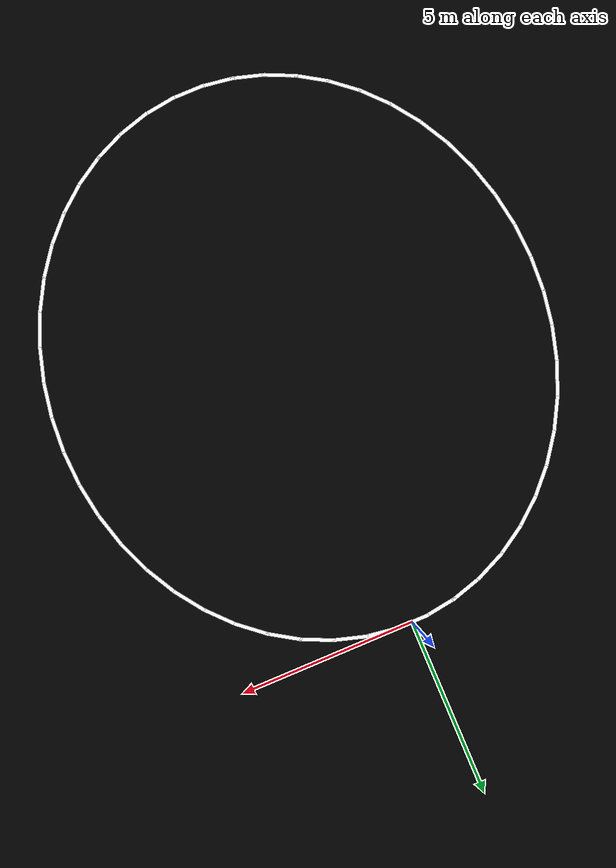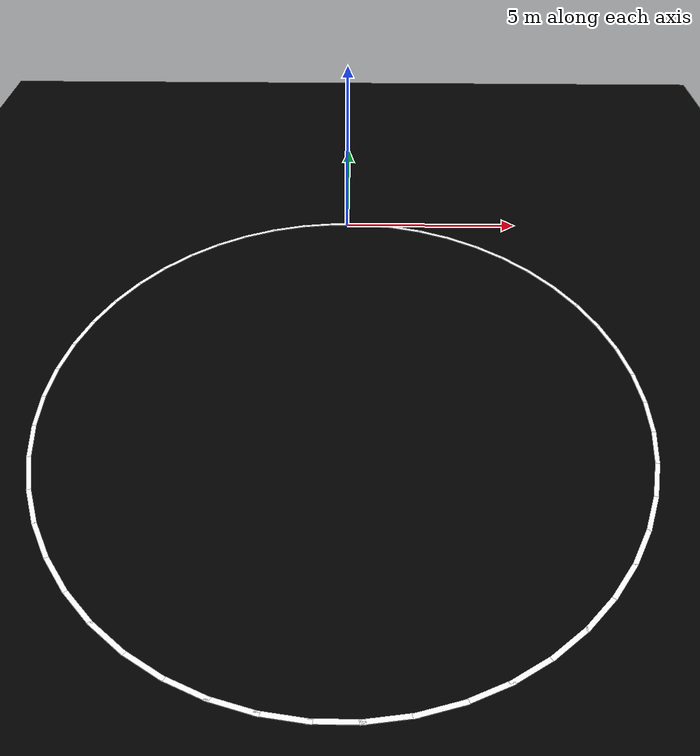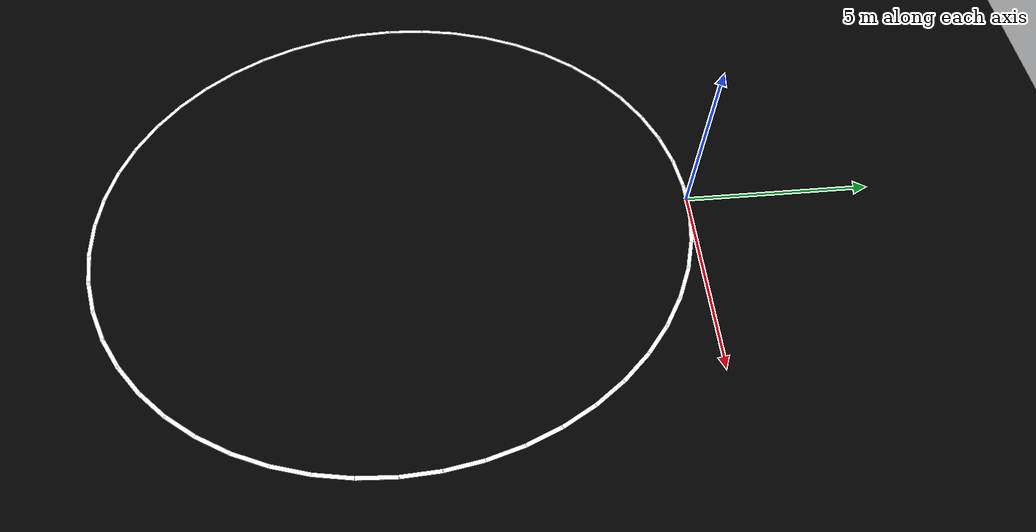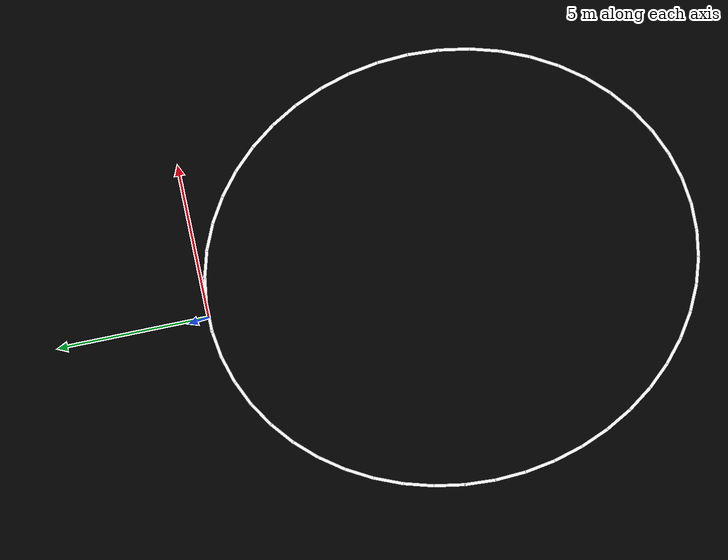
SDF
<?xml version="1.0" encoding="UTF-8"?>
<sdf version="1.9">
  <world name="line_following_track">
    <physics type="ode">
      <max_step_size>0.004</max_step_size>
      <real_time_factor>1.0</real_time_factor>
      <real_time_update_rate>250</real_time_update_rate>
    </physics>
    <gravity>0 0 -9.8</gravity>
    <magnetic_field>6e-06 2.3e-05 -4.2e-05</magnetic_field>
    <atmosphere type="adiabatic"/>
    <scene>
      <grid>false</grid>
      <ambient>0.4 0.4 0.4 1</ambient>
      <background>0.7 0.7 0.7 1</background>
      <shadows>true</shadows>
    </scene>

    <model name="ground_plane">
      <static>true</static>
      <link name="link">
        <collision name="collision">
          <geometry>
            <plane>
              <normal>0 0 1</normal>
              <size>1 1</size>
            </plane>
          </geometry>
          <surface>
            <friction>
              <ode/>
            </friction>
            <bounce/>
            <contact/>
          </surface>
        </collision>
        <visual name="visual">
          <geometry>
            <plane>
              <normal>0 0 1</normal>
              <size>500 500</size>
            </plane>
          </geometry>
          <material>
            <ambient>0 0 0 1</ambient>
            <diffuse>0 0 0 1</diffuse>
          </material>
        </visual>
        <pose>0 0 0 0 -0 0</pose>
        <inertial>
          <pose>0 0 0 0 -0 0</pose>
          <mass>1</mass>
          <inertia>
            <ixx>1</ixx>
            <ixy>0</ixy>
            <ixz>0</ixz>
            <iyy>1</iyy>
            <iyz>0</iyz>
            <izz>1</izz>
          </inertia>
        </inertial>
        <enable_wind>false</enable_wind>
      </link>
      <pose>0 0 0 0 -0 0</pose>
      <self_collide>false</self_collide>
    </model>

    <model name="track_seg_00"><static>true</static><link name="link"><visual name="visual"><geometry><box><size>1.000 0.1 0.01</size></box></geometry><material><ambient>1 1 1 1</ambient><diffuse>1 1 1 1</diffuse></material><pose>-0.000 0.000 0.005 0 0 -3.142</pose></visual></link></model>
    <model name="track_seg_01"><static>true</static><link name="link"><visual name="visual"><geometry><box><size>1.000 0.1 0.01</size></box></geometry><material><ambient>1 1 1 1</ambient><diffuse>1 1 1 1</diffuse></material><pose>-0.877 -0.063 0.005 0 0 -2.998</pose></visual></link></model>
    <model name="track_seg_02"><static>true</static><link name="link"><visual name="visual"><geometry><box><size>1.000 0.1 0.01</size></box></geometry><material><ambient>1 1 1 1</ambient><diffuse>1 1 1 1</diffuse></material><pose>-1.741 -0.251 0.005 0 0 -2.856</pose></visual></link></model>
    <model name="track_seg_03"><static>true</static><link name="link"><visual name="visual"><geometry><box><size>1.000 0.1 0.01</size></box></geometry><material><ambient>1 1 1 1</ambient><diffuse>1 1 1 1</diffuse></material><pose>-2.577 -0.562 0.005 0 0 -2.717</pose></visual></link></model>
    <model name="track_seg_04"><static>true</static><link name="link"><visual name="visual"><geometry><box><size>1.000 0.1 0.01</size></box></geometry><material><ambient>1 1 1 1</ambient><diffuse>1 1 1 1</diffuse></material><pose>-3.372 -0.990 0.005 0 0 -2.581</pose></visual></link></model>
    <model name="track_seg_05"><static>true</static><link name="link"><visual name="visual"><geometry><box><size>1.000 0.1 0.01</size></box></geometry><material><ambient>1 1 1 1</ambient><diffuse>1 1 1 1</diffuse></material><pose>-4.114 -1.528 0.005 0 0 -2.449</pose></visual></link></model>
    <model name="track_seg_06"><static>true</static><link name="link"><visual name="visual"><geometry><box><size>1.000 0.1 0.01</size></box></geometry><material><ambient>1 1 1 1</ambient><diffuse>1 1 1 1</diffuse></material><pose>-4.792 -2.168 0.005 0 0 -2.321</pose></visual></link></model>
    <model name="track_seg_07"><static>true</static><link name="link"><visual name="visual"><geometry><box><size>1.000 0.1 0.01</size></box></geometry><material><ambient>1 1 1 1</ambient><diffuse>1 1 1 1</diffuse></material><pose>-5.394 -2.901 0.005 0 0 -2.197</pose></visual></link></model>
    <model name="track_seg_08"><static>true</static><link name="link"><visual name="visual"><geometry><box><size>1.000 0.1 0.01</size></box></geometry><material><ambient>1 1 1 1</ambient><diffuse>1 1 1 1</diffuse></material><pose>-5.910 -3.713 0.005 0 0 -2.078</pose></visual></link></model>
    <model name="track_seg_09"><static>true</static><link name="link"><visual name="visual"><geometry><box><size>1.000 0.1 0.01</size></box></geometry><material><ambient>1 1 1 1</ambient><diffuse>1 1 1 1</diffuse></material><pose>-6.334 -4.594 0.005 0 0 -1.961</pose></visual></link></model>
    <model name="track_seg_10"><static>true</static><link name="link"><visual name="visual"><geometry><box><size>1.000 0.1 0.01</size></box></geometry><material><ambient>1 1 1 1</ambient><diffuse>1 1 1 1</diffuse></material><pose>-6.657 -5.528 0.005 0 0 -1.848</pose></visual></link></model>
    <model name="track_seg_11"><static>true</static><link name="link"><visual name="visual"><geometry><box><size>1.000 0.1 0.01</size></box></geometry><material><ambient>1 1 1 1</ambient><diffuse>1 1 1 1</diffuse></material><pose>-6.876 -6.501 0.005 0 0 -1.736</pose></visual></link></model>
    <model name="track_seg_12"><static>true</static><link name="link"><visual name="visual"><geometry><box><size>1.000 0.1 0.01</size></box></geometry><material><ambient>1 1 1 1</ambient><diffuse>1 1 1 1</diffuse></material><pose>-6.986 -7.498 0.005 0 0 -1.626</pose></visual></link></model>
    <model name="track_seg_13"><static>true</static><link name="link"><visual name="visual"><geometry><box><size>1.000 0.1 0.01</size></box></geometry><material><ambient>1 1 1 1</ambient><diffuse>1 1 1 1</diffuse></material><pose>-6.986 -8.502 0.005 0 0 -1.516</pose></visual></link></model>
    <model name="track_seg_14"><static>true</static><link name="link"><visual name="visual"><geometry><box><size>1.000 0.1 0.01</size></box></geometry><material><ambient>1 1 1 1</ambient><diffuse>1 1 1 1</diffuse></material><pose>-6.876 -9.499 0.005 0 0 -1.405</pose></visual></link></model>
    <model name="track_seg_15"><static>true</static><link name="link"><visual name="visual"><geometry><box><size>1.000 0.1 0.01</size></box></geometry><material><ambient>1 1 1 1</ambient><diffuse>1 1 1 1</diffuse></material><pose>-6.657 -10.472 0.005 0 0 -1.294</pose></visual></link></model>
    <model name="track_seg_16"><static>true</static><link name="link"><visual name="visual"><geometry><box><size>1.000 0.1 0.01</size></box></geometry><material><ambient>1 1 1 1</ambient><diffuse>1 1 1 1</diffuse></material><pose>-6.334 -11.406 0.005 0 0 -1.180</pose></visual></link></model>
    <model name="track_seg_17"><static>true</static><link name="link"><visual name="visual"><geometry><box><size>1.000 0.1 0.01</size></box></geometry><material><ambient>1 1 1 1</ambient><diffuse>1 1 1 1</diffuse></material><pose>-5.910 -12.287 0.005 0 0 -1.064</pose></visual></link></model>
    <model name="track_seg_18"><static>true</static><link name="link"><visual name="visual"><geometry><box><size>1.000 0.1 0.01</size></box></geometry><material><ambient>1 1 1 1</ambient><diffuse>1 1 1 1</diffuse></material><pose>-5.394 -13.099 0.005 0 0 -0.944</pose></visual></link></model>
    <model name="track_seg_19"><static>true</static><link name="link"><visual name="visual"><geometry><box><size>1.000 0.1 0.01</size></box></geometry><material><ambient>1 1 1 1</ambient><diffuse>1 1 1 1</diffuse></material><pose>-4.792 -13.832 0.005 0 0 -0.821</pose></visual></link></model>
    <model name="track_seg_20"><static>true</static><link name="link"><visual name="visual"><geometry><box><size>1.000 0.1 0.01</size></box></geometry><material><ambient>1 1 1 1</ambient><diffuse>1 1 1 1</diffuse></material><pose>-4.114 -14.472 0.005 0 0 -0.693</pose></visual></link></model>
    <model name="track_seg_21"><static>true</static><link name="link"><visual name="visual"><geometry><box><size>1.000 0.1 0.01</size></box></geometry><material><ambient>1 1 1 1</ambient><diffuse>1 1 1 1</diffuse></material><pose>-3.372 -15.010 0.005 0 0 -0.561</pose></visual></link></model>
    <model name="track_seg_22"><static>true</static><link name="link"><visual name="visual"><geometry><box><size>1.000 0.1 0.01</size></box></geometry><material><ambient>1 1 1 1</ambient><diffuse>1 1 1 1</diffuse></material><pose>-2.577 -15.438 0.005 0 0 -0.425</pose></visual></link></model>
    <model name="track_seg_23"><static>true</static><link name="link"><visual name="visual"><geometry><box><size>1.000 0.1 0.01</size></box></geometry><material><ambient>1 1 1 1</ambient><diffuse>1 1 1 1</diffuse></material><pose>-1.741 -15.749 0.005 0 0 -0.285</pose></visual></link></model>
    <model name="track_seg_24"><static>true</static><link name="link"><visual name="visual"><geometry><box><size>1.000 0.1 0.01</size></box></geometry><material><ambient>1 1 1 1</ambient><diffuse>1 1 1 1</diffuse></material><pose>-0.877 -15.937 0.005 0 0 -0.143</pose></visual></link></model>
    <model name="track_seg_25"><static>true</static><link name="link"><visual name="visual"><geometry><box><size>1.000 0.1 0.01</size></box></geometry><material><ambient>1 1 1 1</ambient><diffuse>1 1 1 1</diffuse></material><pose>-0.000 -16.000 0.005 0 0 -0.000</pose></visual></link></model>
    <model name="track_seg_26"><static>true</static><link name="link"><visual name="visual"><geometry><box><size>1.000 0.1 0.01</size></box></geometry><material><ambient>1 1 1 1</ambient><diffuse>1 1 1 1</diffuse></material><pose>0.877 -15.937 0.005 0 0 0.143</pose></visual></link></model>
    <model name="track_seg_27"><static>true</static><link name="link"><visual name="visual"><geometry><box><size>1.000 0.1 0.01</size></box></geometry><material><ambient>1 1 1 1</ambient><diffuse>1 1 1 1</diffuse></material><pose>1.741 -15.749 0.005 0 0 0.285</pose></visual></link></model>
    <model name="track_seg_28"><static>true</static><link name="link"><visual name="visual"><geometry><box><size>1.000 0.1 0.01</size></box></geometry><material><ambient>1 1 1 1</ambient><diffuse>1 1 1 1</diffuse></material><pose>2.577 -15.438 0.005 0 0 0.425</pose></visual></link></model>
    <model name="track_seg_29"><static>true</static><link name="link"><visual name="visual"><geometry><box><size>1.000 0.1 0.01</size></box></geometry><material><ambient>1 1 1 1</ambient><diffuse>1 1 1 1</diffuse></material><pose>3.372 -15.010 0.005 0 0 0.561</pose></visual></link></model>
    <model name="track_seg_30"><static>true</static><link name="link"><visual name="visual"><geometry><box><size>1.000 0.1 0.01</size></box></geometry><material><ambient>1 1 1 1</ambient><diffuse>1 1 1 1</diffuse></material><pose>4.114 -14.472 0.005 0 0 0.693</pose></visual></link></model>
    <model name="track_seg_31"><static>true</static><link name="link"><visual name="visual"><geometry><box><size>1.000 0.1 0.01</size></box></geometry><material><ambient>1 1 1 1</ambient><diffuse>1 1 1 1</diffuse></material><pose>4.792 -13.832 0.005 0 0 0.821</pose></visual></link></model>
    <model name="track_seg_32"><static>true</static><link name="link"><visual name="visual"><geometry><box><size>1.000 0.1 0.01</size></box></geometry><material><ambient>1 1 1 1</ambient><diffuse>1 1 1 1</diffuse></material><pose>5.394 -13.099 0.005 0 0 0.944</pose></visual></link></model>
    <model name="track_seg_33"><static>true</static><link name="link"><visual name="visual"><geometry><box><size>1.000 0.1 0.01</size></box></geometry><material><ambient>1 1 1 1</ambient><diffuse>1 1 1 1</diffuse></material><pose>5.910 -12.287 0.005 0 0 1.064</pose></visual></link></model>
    <model name="track_seg_34"><static>true</static><link name="link"><visual name="visual"><geometry><box><size>1.000 0.1 0.01</size></box></geometry><material><ambient>1 1 1 1</ambient><diffuse>1 1 1 1</diffuse></material><pose>6.334 -11.406 0.005 0 0 1.180</pose></visual></link></model>
    <model name="track_seg_35"><static>true</static><link name="link"><visual name="visual"><geometry><box><size>1.000 0.1 0.01</size></box></geometry><material><ambient>1 1 1 1</ambient><diffuse>1 1 1 1</diffuse></material><pose>6.657 -10.472 0.005 0 0 1.294</pose></visual></link></model>
    <model name="track_seg_36"><static>true</static><link name="link"><visual name="visual"><geometry><box><size>1.000 0.1 0.01</size></box></geometry><material><ambient>1 1 1 1</ambient><diffuse>1 1 1 1</diffuse></material><pose>6.876 -9.499 0.005 0 0 1.405</pose></visual></link></model>
    <model name="track_seg_37"><static>true</static><link name="link"><visual name="visual"><geometry><box><size>1.000 0.1 0.01</size></box></geometry><material><ambient>1 1 1 1</ambient><diffuse>1 1 1 1</diffuse></material><pose>6.986 -8.502 0.005 0 0 1.516</pose></visual></link></model>
    <model name="track_seg_38"><static>true</static><link name="link"><visual name="visual"><geometry><box><size>1.000 0.1 0.01</size></box></geometry><material><ambient>1 1 1 1</ambient><diffuse>1 1 1 1</diffuse></material><pose>6.986 -7.498 0.005 0 0 1.626</pose></visual></link></model>
    <model name="track_seg_39"><static>true</static><link name="link"><visual name="visual"><geometry><box><size>1.000 0.1 0.01</size></box></geometry><material><ambient>1 1 1 1</ambient><diffuse>1 1 1 1</diffuse></material><pose>6.876 -6.501 0.005 0 0 1.736</pose></visual></link></model>
    <model name="track_seg_40"><static>true</static><link name="link"><visual name="visual"><geometry><box><size>1.000 0.1 0.01</size></box></geometry><material><ambient>1 1 1 1</ambient><diffuse>1 1 1 1</diffuse></material><pose>6.657 -5.528 0.005 0 0 1.848</pose></visual></link></model>
    <model name="track_seg_41"><static>true</static><link name="link"><visual name="visual"><geometry><box><size>1.000 0.1 0.01</size></box></geometry><material><ambient>1 1 1 1</ambient><diffuse>1 1 1 1</diffuse></material><pose>6.334 -4.594 0.005 0 0 1.961</pose></visual></link></model>
    <model name="track_seg_42"><static>true</static><link name="link"><visual name="visual"><geometry><box><size>1.000 0.1 0.01</size></box></geometry><material><ambient>1 1 1 1</ambient><diffuse>1 1 1 1</diffuse></material><pose>5.910 -3.713 0.005 0 0 2.078</pose></visual></link></model>
    <model name="track_seg_43"><static>true</static><link name="link"><visual name="visual"><geometry><box><size>1.000 0.1 0.01</size></box></geometry><material><ambient>1 1 1 1</ambient><diffuse>1 1 1 1</diffuse></material><pose>5.394 -2.901 0.005 0 0 2.197</pose></visual></link></model>
    <model name="track_seg_44"><static>true</static><link name="link"><visual name="visual"><geometry><box><size>1.000 0.1 0.01</size></box></geometry><material><ambient>1 1 1 1</ambient><diffuse>1 1 1 1</diffuse></material><pose>4.792 -2.168 0.005 0 0 2.321</pose></visual></link></model>
    <model name="track_seg_45"><static>true</static><link name="link"><visual name="visual"><geometry><box><size>1.000 0.1 0.01</size></box></geometry><material><ambient>1 1 1 1</ambient><diffuse>1 1 1 1</diffuse></material><pose>4.114 -1.528 0.005 0 0 2.449</pose></visual></link></model>
    <model name="track_seg_46"><static>true</static><link name="link"><visual name="visual"><geometry><box><size>1.000 0.1 0.01</size></box></geometry><material><ambient>1 1 1 1</ambient><diffuse>1 1 1 1</diffuse></material><pose>3.372 -0.990 0.005 0 0 2.581</pose></visual></link></model>
    <model name="track_seg_47"><static>true</static><link name="link"><visual name="visual"><geometry><box><size>1.000 0.1 0.01</size></box></geometry><material><ambient>1 1 1 1</ambient><diffuse>1 1 1 1</diffuse></material><pose>2.577 -0.562 0.005 0 0 2.717</pose></visual></link></model>
    <model name="track_seg_48"><static>true</static><link name="link"><visual name="visual"><geometry><box><size>1.000 0.1 0.01</size></box></geometry><material><ambient>1 1 1 1</ambient><diffuse>1 1 1 1</diffuse></material><pose>1.741 -0.251 0.005 0 0 2.856</pose></visual></link></model>
    <model name="track_seg_49"><static>true</static><link name="link"><visual name="visual"><geometry><box><size>1.000 0.1 0.01</size></box></geometry><material><ambient>1 1 1 1</ambient><diffuse>1 1 1 1</diffuse></material><pose>0.877 -0.063 0.005 0 0 2.998</pose></visual></link></model>

    <light name="sunUTC" type="directional">
      <pose>0 0 500 0 -0 0</pose>
      <cast_shadows>true</cast_shadows>
      <intensity>1</intensity>
      <direction>0.001 0.625 -0.78</direction>
      <diffuse>0.904 0.904 0.904 1</diffuse>
      <specular>0.271 0.271 0.271 1</specular>
      <attenuation>
        <range>2000</range>
        <linear>0</linear>
        <constant>1</constant>
        <quadratic>0</quadratic>
      </attenuation>
      <spot>
        <inner_angle>0</inner_angle>
        <outer_angle>0</outer_angle>
        <falloff>0</falloff>
      </spot>
    </light>
    <spherical_coordinates>
      <surface_model>EARTH_WGS84</surface_model>
      <world_frame_orientation>ENU</world_frame_orientation>
      <latitude_deg>47.397971057728974</latitude_deg>
      <longitude_deg> 8.546163739800146</longitude_deg>
      <elevation>0</elevation>
    </spherical_coordinates>
  </world>
</sdf>
